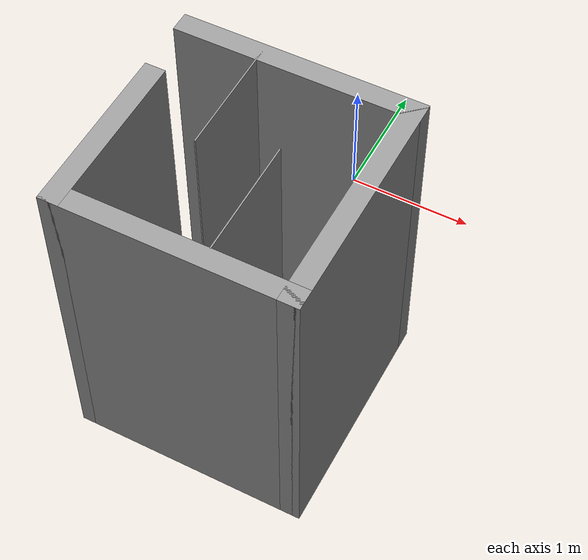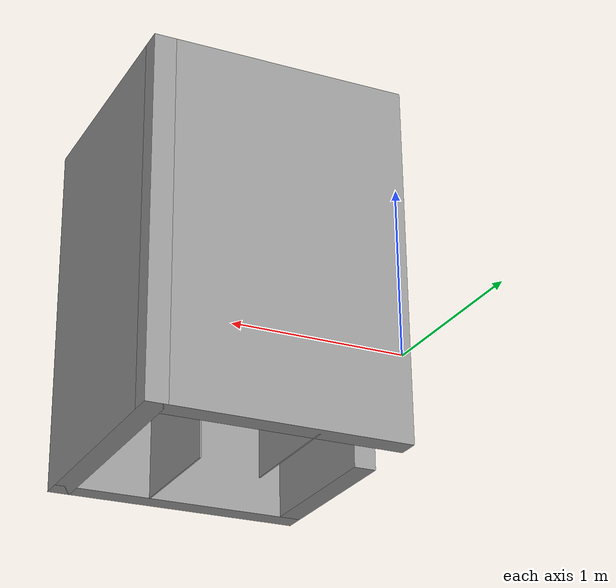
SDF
<?xml version='1.0'?>
<sdf version='1.7'>
  <model name='Simple2Walls'>
    <pose>0.145028 -1.4625 0 0 -0 0</pose>
    <link name='Wall_13'>
      <collision name='Wall_13_Collision'>
        <geometry>
          <box>
            <size>0.86 0.01 2.5</size>
          </box>
        </geometry>
        <pose>0 0 1.25 0 -0 0</pose>
      </collision>
      <visual name='Wall_13_Visual'>
        <pose>0 0 1.25 0 -0 0</pose>
        <geometry>
          <box>
            <size>0.86 0.01 2.5</size>
          </box>
        </geometry>
        <material>
          <script>
            <uri>file://media/materials/scripts/gazebo.material</uri>
            <name>Gazebo/Grey</name>
          </script>
          <ambient>1 1 1 1</ambient>
        </material>
        <meta>
          <layer>0</layer>
        </meta>
      </visual>
      <pose>-0.271249 -0.211939 0 0 -0 -1.5708</pose>
    </link>
    <link name='Wall_16'>
      <collision name='Wall_16_Collision'>
        <geometry>
          <box>
            <size>0.86 0.01 2.5</size>
          </box>
        </geometry>
        <pose>0 0 1.25 0 -0 0</pose>
      </collision>
      <visual name='Wall_16_Visual'>
        <pose>0 0 1.25 0 -0 0</pose>
        <geometry>
          <box>
            <size>0.86 0.01 2.5</size>
          </box>
        </geometry>
        <material>
          <script>
            <uri>file://media/materials/scripts/gazebo.material</uri>
            <name>Gazebo/Grey</name>
          </script>
          <ambient>1 1 1 1</ambient>
        </material>
        <meta>
          <layer>0</layer>
        </meta>
      </visual>
      <pose>0.220351 -0.886585 0 0 -0 1.5708</pose>
    </link>
    <link name='Wall_20'>
      <collision name='Wall_20_Collision'>
        <geometry>
          <box>
            <size>1.25 0.15 2.5</size>
          </box>
        </geometry>
        <pose>0 0 1.25 0 -0 0</pose>
      </collision>
      <visual name='Wall_20_Visual'>
        <pose>0 0 1.25 0 -0 0</pose>
        <geometry>
          <box>
            <size>1.25 0.15 2.5</size>
          </box>
        </geometry>
        <material>
          <script>
            <uri>file://media/materials/scripts/gazebo.material</uri>
            <name>Gazebo/Grey</name>
          </script>
          <ambient>1 1 1 1</ambient>
        </material>
        <meta>
          <layer>0</layer>
        </meta>
      </visual>
      <pose>-0.804972 -0.8375 0 0 -0 1.5708</pose>
    </link>
    <link name='Wall_5'>
      <collision name='Wall_5_Collision'>
        <geometry>
          <box>
            <size>1.75994 0.15 2.5</size>
          </box>
        </geometry>
        <pose>0 0 1.25 0 -0 0</pose>
      </collision>
      <visual name='Wall_5_Visual'>
        <pose>0 0 1.25 0 -0 0</pose>
        <geometry>
          <box>
            <size>1.75994 0.15 2.5</size>
          </box>
        </geometry>
        <material>
          <script>
            <uri>file://media/materials/scripts/gazebo.material</uri>
            <name>Gazebo/Grey</name>
          </script>
          <ambient>1 1 1 1</ambient>
        </material>
        <meta>
          <layer>0</layer>
        </meta>
      </visual>
      <pose>0 -1.3875 0 0 -0 0</pose>
    </link>
    <link name='Wall_6'>
      <collision name='Wall_6_Collision'>
        <geometry>
          <box>
            <size>1.75 0.15 2.5</size>
          </box>
        </geometry>
        <pose>0 0 1.25 0 -0 0</pose>
      </collision>
      <visual name='Wall_6_Visual'>
        <pose>0 0 1.25 0 -0 0</pose>
        <geometry>
          <box>
            <size>1.75 0.15 2.5</size>
          </box>
        </geometry>
        <material>
          <script>
            <uri>file://media/materials/scripts/gazebo.material</uri>
            <name>Gazebo/Grey</name>
          </script>
          <ambient>1 1 1 1</ambient>
        </material>
        <meta>
          <layer>0</layer>
        </meta>
      </visual>
      <pose>0.804972 -0.5875 0 0 -0 1.5708</pose>
    </link>
    <link name='Wall_7'>
      <collision name='Wall_7_Collision'>
        <geometry>
          <box>
            <size>1.75994 0.15 2.5</size>
          </box>
        </geometry>
        <pose>0 0 1.25 0 -0 0</pose>
      </collision>
      <visual name='Wall_7_Visual'>
        <pose>0 0 1.25 0 -0 0</pose>
        <geometry>
          <box>
            <size>1.75994 0.15 2.5</size>
          </box>
        </geometry>
        <material>
          <script>
            <uri>file://media/materials/scripts/gazebo.material</uri>
            <name>Gazebo/Grey</name>
          </script>
          <ambient>1 1 1 1</ambient>
        </material>
        <meta>
          <layer>0</layer>
        </meta>
      </visual>
      <pose>0 0.2125 0 0 -0 3.14159</pose>
    </link>
    <static>1</static>
  </model>
</sdf>
